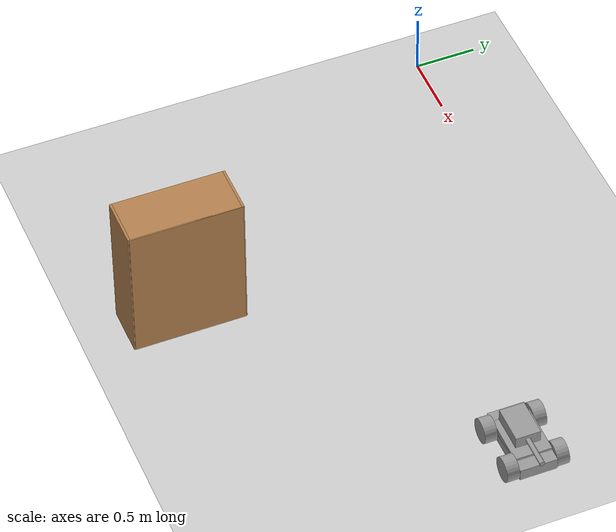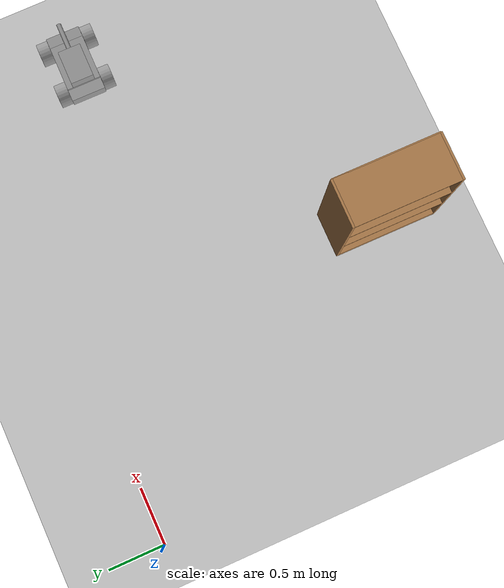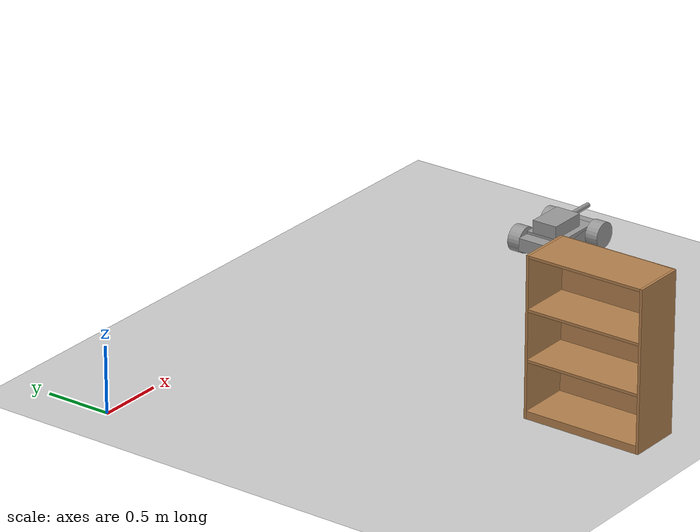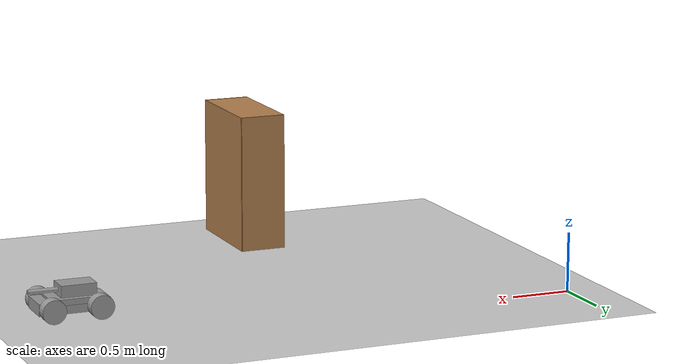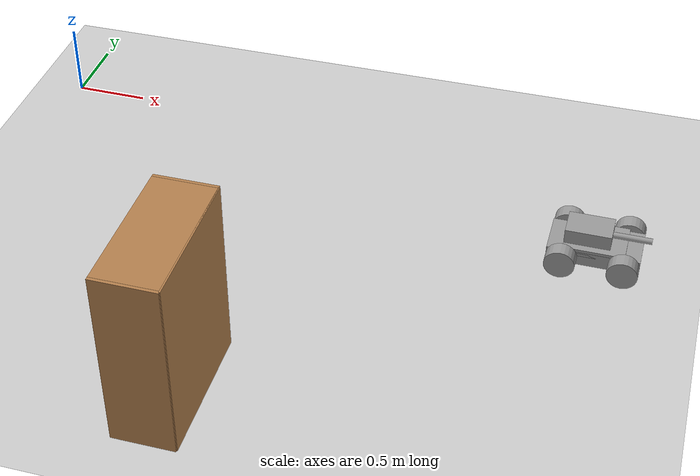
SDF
<sdf version="1.6">
 <world name="default">
  <model name="ground_plane">
   <static>1</static>
   <link name="link">
    <collision name="collision">
     <geometry><plane><normal>0 0 1</normal><size>100 100</size></plane></geometry>
     <surface>
      <contact><collide_bitmask>65535</collide_bitmask></contact>
      <friction><ode><mu>100</mu><mu2>50</mu2></ode></friction>
     </surface>
    </collision>
    <visual name="visual">
     <cast_shadows>0</cast_shadows>
     <geometry><plane><normal>0 0 1</normal><size>100 100</size></plane></geometry>
     <material>
      <script><uri>file://media/materials/scripts/gazebo.material</uri><name>Gazebo/Grey</name></script>
     </material>
    </visual>
   </link>
  </model>
  <model name="bookshelf">
   <static>1</static>
   <link name="link">
    <inertial><mass>1</mass></inertial>
    <collision name="back">
     <pose>0 0.005 0.6 0 -0 0</pose>
     <geometry><box><size>0.9 0.01 1.2</size></box></geometry>
    </collision>
    <visual name="visual1">
     <pose>0 0.005 0.6 0 -0 0</pose>
     <geometry><box><size>0.9 0.01 1.2</size></box></geometry>
     <material>
      <script><uri>file://media/materials/scripts/gazebo.material</uri><name>Gazebo/Wood</name></script>
     </material>
    </visual>
    <collision name="left_side">
     <pose>0.45 -0.195 0.6 0 -0 0</pose>
     <geometry><box><size>0.02 0.4 1.2</size></box></geometry>
    </collision>
    <visual name="visual2">
     <pose>0.45 -0.195 0.6 0 -0 0</pose>
     <geometry><box><size>0.02 0.4 1.2</size></box></geometry>
     <material>
      <script><uri>file://media/materials/scripts/gazebo.material</uri><name>Gazebo/Wood</name></script>
     </material>
    </visual>
    <collision name="right_side">
     <pose>-0.45 -0.195 0.6 0 -0 0</pose>
     <geometry><box><size>0.02 0.4 1.2</size></box></geometry>
    </collision>
    <visual name="visual3">
     <pose>-0.45 -0.195 0.6 0 -0 0</pose>
     <geometry><box><size>0.02 0.4 1.2</size></box></geometry>
     <material>
      <script><uri>file://media/materials/scripts/gazebo.material</uri><name>Gazebo/Wood</name></script>
     </material>
    </visual>
    <collision name="bottom">
     <pose>0 -0.195 0.03 0 -0 0</pose>
     <geometry><box><size>0.88 0.4 0.06</size></box></geometry>
    </collision>
    <visual name="visual4">
     <pose>0 -0.195 0.03 0 -0 0</pose>
     <geometry><box><size>0.88 0.4 0.06</size></box></geometry>
     <material>
      <script><uri>file://media/materials/scripts/gazebo.material</uri><name>Gazebo/Wood</name></script>
     </material>
    </visual>
    <collision name="top">
     <pose>0 -0.195 1.19 0 -0 0</pose>
     <geometry><box><size>0.88 0.4 0.02</size></box></geometry>
    </collision>
    <visual name="visual5">
     <pose>0 -0.195 1.19 0 -0 0</pose>
     <geometry><box><size>0.88 0.4 0.02</size></box></geometry>
     <material>
      <script><uri>file://media/materials/scripts/gazebo.material</uri><name>Gazebo/Wood</name></script>
     </material>
    </visual>
    <collision name="low_shelf">
     <pose>0 -0.195 0.43 0 -0 0</pose>
     <geometry><box><size>0.88 0.4 0.02</size></box></geometry>
    </collision>
    <visual name="visual6">
     <pose>0 -0.195 0.43 0 -0 0</pose>
     <geometry><box><size>0.88 0.4 0.02</size></box></geometry>
     <material>
      <script><uri>file://media/materials/scripts/gazebo.material</uri><name>Gazebo/Wood</name></script>
     </material>
    </visual>
    <collision name="high_shelf">
     <pose>0 -0.195 0.8 0 -0 0</pose>
     <geometry><box><size>0.88 0.4 0.02</size></box></geometry>
    </collision>
    <visual name="visual7">
     <pose>0 -0.195 0.8 0 -0 0</pose>
     <geometry><box><size>0.88 0.4 0.02</size></box></geometry>
     <material>
      <script><uri>file://media/materials/scripts/gazebo.material</uri><name>Gazebo/Wood</name></script>
     </material>
    </visual>
   </link>
   <pose>2.00246 -2.74716 0 0 0 -1.57238</pose>
  </model>
  <model name="TankBot">
   <link name="link_0">
    <pose>4.02291 -0.912872 0.464375 0 -0 0</pose>
    <inertial>
     <mass>1</mass>
     <inertia>
      <ixx>0.166667</ixx>
      <ixy>0</ixy>
      <ixz>0</ixz>
      <iyy>0.166667</iyy>
      <iyz>0</iyz>
      <izz>0.166667</izz>
     </inertia>
    </inertial>
    <visual name="visual">
     <geometry><box><size>0.6 0.3 0.1</size></box></geometry>
     <material>
      <lighting>1</lighting>
      <script><uri>file://media/materials/scripts/gazebo.material</uri><name>Gazebo/Grey</name></script>
      <shader type="pixel"><normal_map>__default__</normal_map></shader>
      <ambient>0.3 0.3 0.3 1</ambient>
      <diffuse>0.7 0.7 0.7 1</diffuse>
      <specular>0.01 0.01 0.01 1</specular>
      <emissive>0 0 0 1</emissive>
     </material>
    </visual>
    <collision name="collision">
     <geometry><box><size>0.6 0.3 0.1</size></box></geometry>
     <surface>
      <friction>
       <ode><mu>1</mu><mu2>1</mu2><fdir1>0 0 0</fdir1><slip1>0</slip1><slip2>0</slip2></ode>
       <torsional>
        <coefficient>1</coefficient>
        <patch_radius>0</patch_radius>
        <surface_radius>0</surface_radius>
        <use_patch_radius>1</use_patch_radius>
        <ode><slip>0</slip></ode>
       </torsional>
      </friction>
      <bounce><restitution_coefficient>0</restitution_coefficient><threshold>1e+06</threshold></bounce>
      <contact>
       <collide_without_contact>0</collide_without_contact>
       <collide_without_contact_bitmask>1</collide_without_contact_bitmask>
       <collide_bitmask>1</collide_bitmask>
       <ode>
        <soft_cfm>0</soft_cfm>
        <soft_erp>0.2</soft_erp>
        <kp>1e+13</kp>
        <kd>1</kd>
        <max_vel>0.01</max_vel>
        <min_depth>0</min_depth>
       </ode>
       <bullet>
        <split_impulse>1</split_impulse>
        <split_impulse_penetration_threshold>-0.01</split_impulse_penetration_threshold>
        <soft_cfm>0</soft_cfm>
        <soft_erp>0.2</soft_erp>
        <kp>1e+13</kp>
        <kd>1</kd>
       </bullet>
      </contact>
     </surface>
    </collision>
   </link>
   <link name="link_1_clone">
    <pose>3.82291 -1.11288 0.464375 1.5707 -0 0</pose>
    <inertial>
     <mass>1</mass>
     <inertia><ixx>0.145833</ixx><ixy>0</ixy><ixz>0</ixz><iyy>0.145833</iyy><iyz>0</iyz><izz>0.125</izz></inertia>
    </inertial>
    <visual name="visual">
     <geometry><cylinder><radius>0.1</radius><length>0.1</length></cylinder></geometry>
     <material>
      <lighting>1</lighting>
      <script><uri>file://media/materials/scripts/gazebo.material</uri><name>Gazebo/Grey</name></script>
      <shader type="pixel"><normal_map>__default__</normal_map></shader>
      <ambient>0.3 0.3 0.3 1</ambient>
      <diffuse>0.7 0.7 0.7 1</diffuse>
      <specular>0.01 0.01 0.01 1</specular>
      <emissive>0 0 0 1</emissive>
     </material>
    </visual>
    <collision name="collision">
     <geometry><cylinder><radius>0.1</radius><length>0.1</length></cylinder></geometry>
     <surface>
      <friction>
       <ode><mu>1</mu><mu2>1</mu2><fdir1>0 0 0</fdir1><slip1>0</slip1><slip2>0</slip2></ode>
       <torsional>
        <coefficient>1</coefficient>
        <patch_radius>0</patch_radius>
        <surface_radius>0</surface_radius>
        <use_patch_radius>1</use_patch_radius>
        <ode><slip>0</slip></ode>
       </torsional>
      </friction>
      <bounce><restitution_coefficient>0</restitution_coefficient><threshold>1e+06</threshold></bounce>
      <contact>
       <collide_without_contact>0</collide_without_contact>
       <collide_without_contact_bitmask>1</collide_without_contact_bitmask>
       <collide_bitmask>1</collide_bitmask>
       <ode>
        <soft_cfm>0</soft_cfm>
        <soft_erp>0.2</soft_erp>
        <kp>1e+13</kp>
        <kd>1</kd>
        <max_vel>0.01</max_vel>
        <min_depth>0</min_depth>
       </ode>
       <bullet>
        <split_impulse>1</split_impulse>
        <split_impulse_penetration_threshold>-0.01</split_impulse_penetration_threshold>
        <soft_cfm>0</soft_cfm>
        <soft_erp>0.2</soft_erp>
        <kp>1e+13</kp>
        <kd>1</kd>
       </bullet>
      </contact>
     </surface>
    </collision>
   </link>
   <link name="link_1_clone_0">
    <pose>4.22291 -1.11288 0.464375 1.5707 -0 0</pose>
    <inertial>
     <mass>1</mass>
     <inertia><ixx>0.145833</ixx><ixy>0</ixy><ixz>0</ixz><iyy>0.145833</iyy><iyz>0</iyz><izz>0.125</izz></inertia>
    </inertial>
    <visual name="visual">
     <geometry><cylinder><radius>0.1</radius><length>0.1</length></cylinder></geometry>
     <material>
      <lighting>1</lighting>
      <script><uri>file://media/materials/scripts/gazebo.material</uri><name>Gazebo/Grey</name></script>
      <shader type="pixel"><normal_map>__default__</normal_map></shader>
      <ambient>0.3 0.3 0.3 1</ambient>
      <diffuse>0.7 0.7 0.7 1</diffuse>
      <specular>0.01 0.01 0.01 1</specular>
      <emissive>0 0 0 1</emissive>
     </material>
    </visual>
    <collision name="collision">
     <geometry><cylinder><radius>0.1</radius><length>0.1</length></cylinder></geometry>
     <surface>
      <friction>
       <ode><mu>1</mu><mu2>1</mu2><fdir1>0 0 0</fdir1><slip1>0</slip1><slip2>0</slip2></ode>
       <torsional>
        <coefficient>1</coefficient>
        <patch_radius>0</patch_radius>
        <surface_radius>0</surface_radius>
        <use_patch_radius>1</use_patch_radius>
        <ode><slip>0</slip></ode>
       </torsional>
      </friction>
      <bounce><restitution_coefficient>0</restitution_coefficient><threshold>1e+06</threshold></bounce>
      <contact>
       <collide_without_contact>0</collide_without_contact>
       <collide_without_contact_bitmask>1</collide_without_contact_bitmask>
       <collide_bitmask>1</collide_bitmask>
       <ode>
        <soft_cfm>0</soft_cfm>
        <soft_erp>0.2</soft_erp>
        <kp>1e+13</kp>
        <kd>1</kd>
        <max_vel>0.01</max_vel>
        <min_depth>0</min_depth>
       </ode>
       <bullet>
        <split_impulse>1</split_impulse>
        <split_impulse_penetration_threshold>-0.01</split_impulse_penetration_threshold>
        <soft_cfm>0</soft_cfm>
        <soft_erp>0.2</soft_erp>
        <kp>1e+13</kp>
        <kd>1</kd>
       </bullet>
      </contact>
     </surface>
    </collision>
   </link>
   <link name="link_1_clone_0_clone">
    <pose>3.82291 -0.712862 0.464375 1.5707 -0 0</pose>
    <inertial>
     <mass>1</mass>
     <inertia><ixx>0.145833</ixx><ixy>0</ixy><ixz>0</ixz><iyy>0.145833</iyy><iyz>0</iyz><izz>0.125</izz></inertia>
    </inertial>
    <visual name="visual">
     <geometry><cylinder><radius>0.1</radius><length>0.1</length></cylinder></geometry>
     <material>
      <lighting>1</lighting>
      <script><uri>file://media/materials/scripts/gazebo.material</uri><name>Gazebo/Grey</name></script>
      <shader type="pixel"><normal_map>__default__</normal_map></shader>
      <ambient>0.3 0.3 0.3 1</ambient>
      <diffuse>0.7 0.7 0.7 1</diffuse>
      <specular>0.01 0.01 0.01 1</specular>
      <emissive>0 0 0 1</emissive>
     </material>
    </visual>
    <collision name="collision">
     <geometry><cylinder><radius>0.1</radius><length>0.1</length></cylinder></geometry>
     <surface>
      <friction>
       <ode><mu>1</mu><mu2>1</mu2><fdir1>0 0 0</fdir1><slip1>0</slip1><slip2>0</slip2></ode>
       <torsional>
        <coefficient>1</coefficient>
        <patch_radius>0</patch_radius>
        <surface_radius>0</surface_radius>
        <use_patch_radius>1</use_patch_radius>
        <ode><slip>0</slip></ode>
       </torsional>
      </friction>
      <bounce><restitution_coefficient>0</restitution_coefficient><threshold>1e+06</threshold></bounce>
      <contact>
       <collide_without_contact>0</collide_without_contact>
       <collide_without_contact_bitmask>1</collide_without_contact_bitmask>
       <collide_bitmask>1</collide_bitmask>
       <ode>
        <soft_cfm>0</soft_cfm>
        <soft_erp>0.2</soft_erp>
        <kp>1e+13</kp>
        <kd>1</kd>
        <max_vel>0.01</max_vel>
        <min_depth>0</min_depth>
       </ode>
       <bullet>
        <split_impulse>1</split_impulse>
        <split_impulse_penetration_threshold>-0.01</split_impulse_penetration_threshold>
        <soft_cfm>0</soft_cfm>
        <soft_erp>0.2</soft_erp>
        <kp>1e+13</kp>
        <kd>1</kd>
       </bullet>
      </contact>
     </surface>
    </collision>
   </link>
   <link name="link_1_clone_clone">
    <pose>4.22291 -0.712862 0.464375 1.5707 -0 0</pose>
    <inertial>
     <mass>1</mass>
     <inertia><ixx>0.145833</ixx><ixy>0</ixy><ixz>0</ixz><iyy>0.145833</iyy><iyz>0</iyz><izz>0.125</izz></inertia>
    </inertial>
    <visual name="visual">
     <geometry><cylinder><radius>0.1</radius><length>0.1</length></cylinder></geometry>
     <material>
      <lighting>1</lighting>
      <script><uri>file://media/materials/scripts/gazebo.material</uri><name>Gazebo/Grey</name></script>
      <shader type="pixel"><normal_map>__default__</normal_map></shader>
      <ambient>0.3 0.3 0.3 1</ambient>
      <diffuse>0.7 0.7 0.7 1</diffuse>
      <specular>0.01 0.01 0.01 1</specular>
      <emissive>0 0 0 1</emissive>
     </material>
    </visual>
    <collision name="collision">
     <geometry><cylinder><radius>0.1</radius><length>0.1</length></cylinder></geometry>
     <surface>
      <friction>
       <ode><mu>1</mu><mu2>1</mu2><fdir1>0 0 0</fdir1><slip1>0</slip1><slip2>0</slip2></ode>
       <torsional>
        <coefficient>1</coefficient>
        <patch_radius>0</patch_radius>
        <surface_radius>0</surface_radius>
        <use_patch_radius>1</use_patch_radius>
        <ode><slip>0</slip></ode>
       </torsional>
      </friction>
      <bounce><restitution_coefficient>0</restitution_coefficient><threshold>1e+06</threshold></bounce>
      <contact>
       <collide_without_contact>0</collide_without_contact>
       <collide_without_contact_bitmask>1</collide_without_contact_bitmask>
       <collide_bitmask>1</collide_bitmask>
       <ode>
        <soft_cfm>0</soft_cfm>
        <soft_erp>0.2</soft_erp>
        <kp>1e+13</kp>
        <kd>1</kd>
        <max_vel>0.01</max_vel>
        <min_depth>0</min_depth>
       </ode>
       <bullet>
        <split_impulse>1</split_impulse>
        <split_impulse_penetration_threshold>-0.01</split_impulse_penetration_threshold>
        <soft_cfm>0</soft_cfm>
        <soft_erp>0.2</soft_erp>
        <kp>1e+13</kp>
        <kd>1</kd>
       </bullet>
      </contact>
     </surface>
    </collision>
   </link>
   <link name="link_2_clone">
    <pose>4.02291 -0.912872 0.509375 0 -0 0</pose>
    <inertial>
     <mass>1</mass>
     <inertia>
      <ixx>0.166667</ixx>
      <ixy>0</ixy>
      <ixz>0</ixz>
      <iyy>0.166667</iyy>
      <iyz>0</iyz>
      <izz>0.166667</izz>
     </inertia>
    </inertial>
    <visual name="visual">
     <geometry><box><size>0.4 0.3 0.05</size></box></geometry>
     <material>
      <lighting>1</lighting>
      <script><uri>file://media/materials/scripts/gazebo.material</uri><name>Gazebo/Grey</name></script>
      <shader type="pixel"><normal_map>__default__</normal_map></shader>
      <ambient>0.3 0.3 0.3 1</ambient>
      <diffuse>0.7 0.7 0.7 1</diffuse>
      <specular>0.01 0.01 0.01 1</specular>
      <emissive>0 0 0 1</emissive>
     </material>
    </visual>
    <collision name="collision">
     <geometry><box><size>0.4 0.3 0.05</size></box></geometry>
     <surface>
      <friction>
       <ode><mu>1</mu><mu2>1</mu2><fdir1>0 0 0</fdir1><slip1>0</slip1><slip2>0</slip2></ode>
       <torsional>
        <coefficient>1</coefficient>
        <patch_radius>0</patch_radius>
        <surface_radius>0</surface_radius>
        <use_patch_radius>1</use_patch_radius>
        <ode><slip>0</slip></ode>
       </torsional>
      </friction>
      <bounce><restitution_coefficient>0</restitution_coefficient><threshold>1e+06</threshold></bounce>
      <contact>
       <collide_without_contact>0</collide_without_contact>
       <collide_without_contact_bitmask>1</collide_without_contact_bitmask>
       <collide_bitmask>1</collide_bitmask>
       <ode>
        <soft_cfm>0</soft_cfm>
        <soft_erp>0.2</soft_erp>
        <kp>1e+13</kp>
        <kd>1</kd>
        <max_vel>0.01</max_vel>
        <min_depth>0</min_depth>
       </ode>
       <bullet>
        <split_impulse>1</split_impulse>
        <split_impulse_penetration_threshold>-0.01</split_impulse_penetration_threshold>
        <soft_cfm>0</soft_cfm>
        <soft_erp>0.2</soft_erp>
        <kp>1e+13</kp>
        <kd>1</kd>
       </bullet>
      </contact>
     </surface>
    </collision>
   </link>
   <link name="link_3_clone">
    <pose>3.97291 -0.912872 0.584375 0 -0 0</pose>
    <inertial>
     <mass>1</mass>
     <inertia>
      <ixx>0.166667</ixx>
      <ixy>0</ixy>
      <ixz>0</ixz>
      <iyy>0.166667</iyy>
      <iyz>0</iyz>
      <izz>0.166667</izz>
     </inertia>
    </inertial>
    <visual name="visual">
     <geometry><box><size>0.3 0.2 0.1</size></box></geometry>
     <material>
      <lighting>1</lighting>
      <script><uri>file://media/materials/scripts/gazebo.material</uri><name>Gazebo/Grey</name></script>
      <shader type="pixel"><normal_map>__default__</normal_map></shader>
      <ambient>0.3 0.3 0.3 1</ambient>
      <diffuse>0.7 0.7 0.7 1</diffuse>
      <specular>0.01 0.01 0.01 1</specular>
      <emissive>0 0 0 1</emissive>
     </material>
    </visual>
    <collision name="collision">
     <geometry><box><size>0.3 0.2 0.1</size></box></geometry>
     <surface>
      <friction>
       <ode><mu>1</mu><mu2>1</mu2><fdir1>0 0 0</fdir1><slip1>0</slip1><slip2>0</slip2></ode>
       <torsional>
        <coefficient>1</coefficient>
        <patch_radius>0</patch_radius>
        <surface_radius>0</surface_radius>
        <use_patch_radius>1</use_patch_radius>
        <ode><slip>0</slip></ode>
       </torsional>
      </friction>
      <bounce><restitution_coefficient>0</restitution_coefficient><threshold>1e+06</threshold></bounce>
      <contact>
       <collide_without_contact>0</collide_without_contact>
       <collide_without_contact_bitmask>1</collide_without_contact_bitmask>
       <collide_bitmask>1</collide_bitmask>
       <ode>
        <soft_cfm>0</soft_cfm>
        <soft_erp>0.2</soft_erp>
        <kp>1e+13</kp>
        <kd>1</kd>
        <max_vel>0.01</max_vel>
        <min_depth>0</min_depth>
       </ode>
       <bullet>
        <split_impulse>1</split_impulse>
        <split_impulse_penetration_threshold>-0.01</split_impulse_penetration_threshold>
        <soft_cfm>0</soft_cfm>
        <soft_erp>0.2</soft_erp>
        <kp>1e+13</kp>
        <kd>1</kd>
       </bullet>
      </contact>
     </surface>
    </collision>
   </link>
   <link name="link_4_clone">
    <pose>4.24792 -0.912872 0.584375 1.5707 0 1.5707</pose>
    <inertial>
     <mass>1</mass>
     <inertia><ixx>0.145833</ixx><ixy>0</ixy><ixz>0</ixz><iyy>0.145833</iyy><iyz>0</iyz><izz>0.125</izz></inertia>
    </inertial>
    <visual name="visual">
     <geometry><cylinder><radius>0.02</radius><length>0.25</length></cylinder></geometry>
     <material>
      <lighting>1</lighting>
      <script><uri>file://media/materials/scripts/gazebo.material</uri><name>Gazebo/Grey</name></script>
      <shader type="pixel"><normal_map>__default__</normal_map></shader>
      <ambient>0.3 0.3 0.3 1</ambient>
      <diffuse>0.7 0.7 0.7 1</diffuse>
      <specular>0.01 0.01 0.01 1</specular>
      <emissive>0 0 0 1</emissive>
     </material>
    </visual>
    <collision name="collision">
     <geometry><cylinder><radius>0.02</radius><length>0.25</length></cylinder></geometry>
     <surface>
      <friction>
       <ode><mu>1</mu><mu2>1</mu2><fdir1>0 0 0</fdir1><slip1>0</slip1><slip2>0</slip2></ode>
       <torsional>
        <coefficient>1</coefficient>
        <patch_radius>0</patch_radius>
        <surface_radius>0</surface_radius>
        <use_patch_radius>1</use_patch_radius>
        <ode><slip>0</slip></ode>
       </torsional>
      </friction>
      <bounce><restitution_coefficient>0</restitution_coefficient><threshold>1e+06</threshold></bounce>
      <contact>
       <collide_without_contact>0</collide_without_contact>
       <collide_without_contact_bitmask>1</collide_without_contact_bitmask>
       <collide_bitmask>1</collide_bitmask>
       <ode>
        <soft_cfm>0</soft_cfm>
        <soft_erp>0.2</soft_erp>
        <kp>1e+13</kp>
        <kd>1</kd>
        <max_vel>0.01</max_vel>
        <min_depth>0</min_depth>
       </ode>
       <bullet>
        <split_impulse>1</split_impulse>
        <split_impulse_penetration_threshold>-0.01</split_impulse_penetration_threshold>
        <soft_cfm>0</soft_cfm>
        <soft_erp>0.2</soft_erp>
        <kp>1e+13</kp>
        <kd>1</kd>
       </bullet>
      </contact>
     </surface>
    </collision>
   </link>
   <joint name="link_0_JOINT_2" type="revolute">
    <parent>link_0</parent>
    <child>link_1_clone_clone</child>
    <axis>
     <xyz>0 0 1</xyz>
     <use_parent_model_frame>0</use_parent_model_frame>
     <limit>
      <lower>-1.79769e+308</lower>
      <upper>1.79769e+308</upper>
      <effort>-1</effort>
      <velocity>-1</velocity>
     </limit>
     <dynamics>
      <spring_reference>0</spring_reference>
      <spring_stiffness>0</spring_stiffness>
      <damping>0</damping>
     </dynamics>
    </axis>
    <physics>
     <ode><limit><cfm>0</cfm><erp>0.2</erp></limit><suspension><cfm>0</cfm><erp>0.2</erp></suspension></ode>
    </physics>
   </joint>
   <joint name="link_0_JOINT_3" type="revolute">
    <parent>link_0</parent>
    <child>link_1_clone_0</child>
    <axis>
     <xyz>0 0 1</xyz>
     <use_parent_model_frame>0</use_parent_model_frame>
     <limit>
      <lower>-1.79769e+308</lower>
      <upper>1.79769e+308</upper>
      <effort>-1</effort>
      <velocity>-1</velocity>
     </limit>
     <dynamics>
      <spring_reference>0</spring_reference>
      <spring_stiffness>0</spring_stiffness>
      <damping>0</damping>
     </dynamics>
    </axis>
    <physics>
     <ode><limit><cfm>0</cfm><erp>0.2</erp></limit><suspension><cfm>0</cfm><erp>0.2</erp></suspension></ode>
    </physics>
   </joint>
   <joint name="link_0_JOINT_4" type="revolute">
    <parent>link_0</parent>
    <child>link_1_clone_0_clone</child>
    <axis>
     <xyz>0 0 1</xyz>
     <use_parent_model_frame>0</use_parent_model_frame>
     <limit>
      <lower>-1.79769e+308</lower>
      <upper>1.79769e+308</upper>
      <effort>-1</effort>
      <velocity>-1</velocity>
     </limit>
     <dynamics>
      <spring_reference>0</spring_reference>
      <spring_stiffness>0</spring_stiffness>
      <damping>0</damping>
     </dynamics>
    </axis>
    <physics>
     <ode><limit><cfm>0</cfm><erp>0.2</erp></limit><suspension><cfm>0</cfm><erp>0.2</erp></suspension></ode>
    </physics>
   </joint>
   <joint name="link_0_JOINT_5" type="revolute">
    <parent>link_0</parent>
    <child>link_1_clone</child>
    <axis>
     <xyz>0 0 1</xyz>
     <use_parent_model_frame>0</use_parent_model_frame>
     <limit>
      <lower>-1.79769e+308</lower>
      <upper>1.79769e+308</upper>
      <effort>-1</effort>
      <velocity>-1</velocity>
     </limit>
     <dynamics>
      <spring_reference>0</spring_reference>
      <spring_stiffness>0</spring_stiffness>
      <damping>0</damping>
     </dynamics>
    </axis>
    <physics>
     <ode><limit><cfm>0</cfm><erp>0.2</erp></limit><suspension><cfm>0</cfm><erp>0.2</erp></suspension></ode>
    </physics>
   </joint>
   <joint name="link_0_JOINT_7" type="fixed">
    <parent>link_0</parent>
    <child>link_2_clone</child>
    <physics>
     <ode><limit><cfm>0</cfm><erp>0.2</erp></limit><suspension><cfm>0</cfm><erp>0.2</erp></suspension></ode>
    </physics>
   </joint>
   <joint name="link_2_clone_JOINT_9" type="fixed">
    <parent>link_2_clone</parent>
    <child>link_3_clone</child>
    <physics>
     <ode><limit><cfm>0</cfm><erp>0.2</erp></limit><suspension><cfm>0</cfm><erp>0.2</erp></suspension></ode>
    </physics>
   </joint>
   <joint name="link_3_clone_JOINT_11" type="fixed">
    <parent>link_3_clone</parent>
    <child>link_4_clone</child>
    <physics>
     <ode><limit><cfm>0</cfm><erp>0.2</erp></limit><suspension><cfm>0</cfm><erp>0.2</erp></suspension></ode>
    </physics>
   </joint>
   <static>0</static>
   <pose>0.011588 0.017541 -0.364368 -0 3e-06 -0.004814</pose>
  </model>
 </world>
</sdf>
